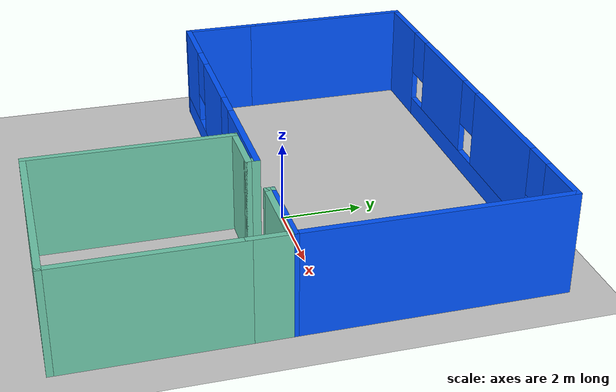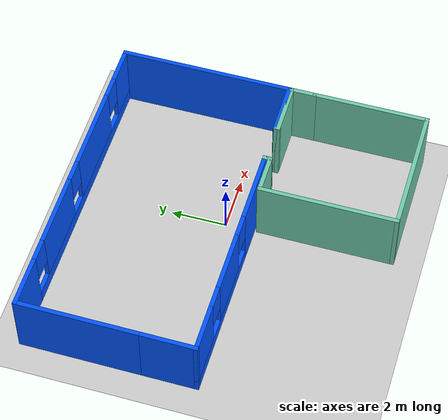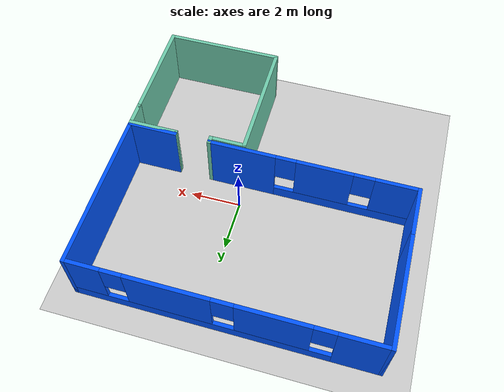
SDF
<?xml version="1.0" ?>
<sdf version="1.4">
  <!-- We use a custom world for the rrbot so that the camera angle is launched correctly -->

  <world name="default">
    <include>
      <uri>/home/antonio/ROS/mybot_ws/src/mybot_gazebo/worlds/RobotHouse</uri>
    </include>

    <include>
      <uri>model://ground_plane</uri>
    </include>

    <!-- Global light source -->
    <include>
      <uri>model://sun</uri>
    </include>

    <!-- Focus camera on tall pendulum -->
    <gui fullscreen='0'>
      <camera name='user_camera'>
        <pose>4.927360 -4.376610 3.740080 0.000000 0.275643 2.356190</pose>
        <view_controller>orbit</view_controller>
      </camera>
    </gui>

  </world>
</sdf>

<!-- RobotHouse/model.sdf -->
<sdf version='1.6'>
  <model name='RobotHouse'>
    <pose frame=''>-0.961892 -0.402466 0 0 -0 0</pose>
    <link name='Wall_0'>
      <pose frame=''>-1.625 -0.575 0 0 -0 3.14159</pose>
      <visual name='Wall_0_Visual_0'>
        <pose frame=''>-2.76283 0 1.25 0 -0 0</pose>
        <geometry>
          <box>
            <size>2.72433 0.15 2.5</size>
          </box>
        </geometry>
        <material>
          <script>
            <uri>file://media/materials/scripts/gazebo.material</uri>
            <name>Gazebo/Grey</name>
          </script>
          <ambient>0 0.333333 1 1</ambient>
        </material>
      </visual>
      <collision name='Wall_0_Collision_0'>
        <geometry>
          <box>
            <size>2.72433 0.15 2.5</size>
          </box>
        </geometry>
        <pose frame=''>-2.76283 0 1.25 0 -0 0</pose>
      </collision>
      <visual name='Wall_0_Visual_1'>
        <pose frame=''>1.36217 0 0.25 0 -0 0</pose>
        <geometry>
          <box>
            <size>5.52567 0.15 0.5</size>
          </box>
        </geometry>
        <material>
          <script>
            <uri>file://media/materials/scripts/gazebo.material</uri>
            <name>Gazebo/Grey</name>
          </script>
          <ambient>0 0.333333 1 1</ambient>
        </material>
      </visual>
      <collision name='Wall_0_Collision_1'>
        <geometry>
          <box>
            <size>5.52567 0.15 0.5</size>
          </box>
        </geometry>
        <pose frame=''>1.36217 0 0.25 0 -0 0</pose>
      </collision>
      <visual name='Wall_0_Visual_2'>
        <pose frame=''>0.498252 0 1.5 0 -0 0</pose>
        <geometry>
          <box>
            <size>2.19784 0.15 2</size>
          </box>
        </geometry>
        <material>
          <script>
            <uri>file://media/materials/scripts/gazebo.material</uri>
            <name>Gazebo/Grey</name>
          </script>
          <ambient>0 0.333333 1 1</ambient>
        </material>
      </visual>
      <collision name='Wall_0_Collision_2'>
        <geometry>
          <box>
            <size>2.19784 0.15 2</size>
          </box>
        </geometry>
        <pose frame=''>0.498252 0 1.5 0 -0 0</pose>
      </collision>
      <visual name='Wall_0_Visual_3'>
        <pose frame=''>3.26109 0 1.5 0 -0 0</pose>
        <geometry>
          <box>
            <size>1.72783 0.15 2</size>
          </box>
        </geometry>
        <material>
          <script>
            <uri>file://media/materials/scripts/gazebo.material</uri>
            <name>Gazebo/Grey</name>
          </script>
          <ambient>0 0.333333 1 1</ambient>
        </material>
      </visual>
      <collision name='Wall_0_Collision_3'>
        <geometry>
          <box>
            <size>1.72783 0.15 2</size>
          </box>
        </geometry>
        <pose frame=''>3.26109 0 1.5 0 -0 0</pose>
      </collision>
      <visual name='Wall_0_Visual_4'>
        <pose frame=''>-1.00067 0 1.9 0 -0 0</pose>
        <geometry>
          <box>
            <size>0.8 0.15 1.2</size>
          </box>
        </geometry>
        <material>
          <script>
            <uri>file://media/materials/scripts/gazebo.material</uri>
            <name>Gazebo/Grey</name>
          </script>
          <ambient>0 0.333333 1 1</ambient>
        </material>
      </visual>
      <collision name='Wall_0_Collision_4'>
        <geometry>
          <box>
            <size>0.8 0.15 1.2</size>
          </box>
        </geometry>
        <pose frame=''>-1.00067 0 1.9 0 -0 0</pose>
      </collision>
      <visual name='Wall_0_Visual_5'>
        <pose frame=''>1.99717 0 1.9 0 -0 0</pose>
        <geometry>
          <box>
            <size>0.8 0.15 1.2</size>
          </box>
        </geometry>
        <material>
          <script>
            <uri>file://media/materials/scripts/gazebo.material</uri>
            <name>Gazebo/Grey</name>
          </script>
          <ambient>0 0.333333 1 1</ambient>
        </material>
      </visual>
      <collision name='Wall_0_Collision_5'>
        <geometry>
          <box>
            <size>0.8 0.15 1.2</size>
          </box>
        </geometry>
        <pose frame=''>1.99717 0 1.9 0 -0 0</pose>
      </collision>
    </link>
    <link name='Wall_1'>
      <collision name='Wall_1_Collision'>
        <geometry>
          <box>
            <size>2 0.15 2.5</size>
          </box>
        </geometry>
        <pose frame=''>0 0 1.25 0 -0 0</pose>
      </collision>
      <visual name='Wall_1_Visual'>
        <pose frame=''>0 0 1.25 0 -0 0</pose>
        <geometry>
          <box>
            <size>2 0.15 2.5</size>
          </box>
        </geometry>
        <material>
          <script>
            <uri>file://media/materials/scripts/gazebo.material</uri>
            <name>Gazebo/Grey</name>
          </script>
          <ambient>0 0.333333 1 1</ambient>
        </material>
      </visual>
      <pose frame=''>-5.675 0.35 0 0 -0 1.5708</pose>
    </link>
    <link name='Wall_10'>
      <collision name='Wall_10_Collision'>
        <geometry>
          <box>
            <size>4.25 0.15 2.5</size>
          </box>
        </geometry>
        <pose frame=''>0 0 1.25 0 -0 0</pose>
      </collision>
      <visual name='Wall_10_Visual'>
        <pose frame=''>0 0 1.25 0 -0 0</pose>
        <geometry>
          <box>
            <size>4.25 0.15 2.5</size>
          </box>
        </geometry>
        <material>
          <script>
            <uri>file://media/materials/scripts/gazebo.material</uri>
            <name>Gazebo/Grey</name>
          </script>
          <ambient>0.435294 0.796078 0.67451 1</ambient>
        </material>
      </visual>
      <pose frame=''>5.675 -3.575 0 0 0 -1.5708</pose>
    </link>
    <link name='Wall_11'>
      <collision name='Wall_11_Collision'>
        <geometry>
          <box>
            <size>4.75 0.15 2.5</size>
          </box>
        </geometry>
        <pose frame=''>0 0 1.25 0 -0 0</pose>
      </collision>
      <visual name='Wall_11_Visual'>
        <pose frame=''>0 0 1.25 0 -0 0</pose>
        <geometry>
          <box>
            <size>4.75 0.15 2.5</size>
          </box>
        </geometry>
        <material>
          <script>
            <uri>file://media/materials/scripts/gazebo.material</uri>
            <name>Gazebo/Grey</name>
          </script>
          <ambient>0.435294 0.796078 0.67451 1</ambient>
        </material>
      </visual>
      <pose frame=''>3.375 -5.625 0 0 -0 3.14159</pose>
    </link>
    <link name='Wall_12'>
      <collision name='Wall_12_Collision'>
        <geometry>
          <box>
            <size>5 0.15 2.5</size>
          </box>
        </geometry>
        <pose frame=''>0 0 1.25 0 -0 0</pose>
      </collision>
      <visual name='Wall_12_Visual'>
        <pose frame=''>0 0 1.25 0 -0 0</pose>
        <geometry>
          <box>
            <size>5 0.15 2.5</size>
          </box>
        </geometry>
        <material>
          <script>
            <uri>file://media/materials/scripts/gazebo.material</uri>
            <name>Gazebo/Grey</name>
          </script>
          <ambient>0.435294 0.796078 0.67451 1</ambient>
        </material>
      </visual>
      <pose frame=''>1.075 -3.2 0 0 -0 1.5708</pose>
    </link>
    <link name='Wall_13'>
      <collision name='Wall_13_Collision'>
        <geometry>
          <box>
            <size>1.5 0.15 2.5</size>
          </box>
        </geometry>
        <pose frame=''>0 0 1.25 0 -0 0</pose>
      </collision>
      <visual name='Wall_13_Visual'>
        <pose frame=''>0 0 1.25 0 -0 0</pose>
        <geometry>
          <box>
            <size>1.5 0.15 2.5</size>
          </box>
        </geometry>
        <material>
          <script>
            <uri>file://media/materials/scripts/gazebo.material</uri>
            <name>Gazebo/Grey</name>
          </script>
          <ambient>0.435294 0.796078 0.67451 1</ambient>
        </material>
      </visual>
      <pose frame=''>1.75 -0.775 0 0 -0 0</pose>
    </link>
    <link name='Wall_2'>
      <collision name='Wall_2_Collision'>
        <geometry>
          <box>
            <size>4.5 0.15 2.5</size>
          </box>
        </geometry>
        <pose frame=''>0 0 1.25 0 -0 0</pose>
      </collision>
      <visual name='Wall_2_Visual'>
        <pose frame=''>0 0 1.25 0 -0 0</pose>
        <geometry>
          <box>
            <size>4.5 0.15 2.5</size>
          </box>
        </geometry>
        <material>
          <script>
            <uri>file://media/materials/scripts/gazebo.material</uri>
            <name>Gazebo/Grey</name>
          </script>
          <ambient>0 0.333333 1 1</ambient>
        </material>
      </visual>
      <pose frame=''>-5.675 3.45 0 0 -0 1.5708</pose>
    </link>
    <link name='Wall_21'>
      <collision name='Wall_21_Collision'>
        <geometry>
          <box>
            <size>0.35 0.15 2.5</size>
          </box>
        </geometry>
        <pose frame=''>0 0 1.25 0 -0 0</pose>
      </collision>
      <visual name='Wall_21_Visual'>
        <pose frame=''>0 0 1.25 0 -0 0</pose>
        <geometry>
          <box>
            <size>0.35 0.15 2.5</size>
          </box>
        </geometry>
        <material>
          <script>
            <uri>file://media/materials/scripts/gazebo.material</uri>
            <name>Gazebo/Grey</name>
          </script>
          <ambient>0.435294 0.796078 0.67451 1</ambient>
        </material>
      </visual>
      <pose frame=''>2.425 -0.675 0 0 -0 1.5708</pose>
    </link>
    <link name='Wall_23'>
      <collision name='Wall_23_Collision'>
        <geometry>
          <box>
            <size>2 0.15 2.5</size>
          </box>
        </geometry>
        <pose frame=''>0 0 1.25 0 -0 0</pose>
      </collision>
      <visual name='Wall_23_Visual'>
        <pose frame=''>0 0 1.25 0 -0 0</pose>
        <geometry>
          <box>
            <size>2 0.15 2.5</size>
          </box>
        </geometry>
        <material>
          <script>
            <uri>file://media/materials/scripts/gazebo.material</uri>
            <name>Gazebo/Grey</name>
          </script>
          <ambient>0.435294 0.796078 0.67451 1</ambient>
        </material>
      </visual>
      <pose frame=''>4.75 -0.675 0 0 -0 3.14159</pose>
    </link>
    <link name='Wall_24'>
      <collision name='Wall_24_Collision'>
        <geometry>
          <box>
            <size>0.25 0.15 2.5</size>
          </box>
        </geometry>
        <pose frame=''>0 0 1.25 0 -0 0</pose>
      </collision>
      <visual name='Wall_24_Visual'>
        <pose frame=''>0 0 1.25 0 -0 0</pose>
        <geometry>
          <box>
            <size>0.25 0.15 2.5</size>
          </box>
        </geometry>
        <material>
          <script>
            <uri>file://media/materials/scripts/gazebo.material</uri>
            <name>Gazebo/Grey</name>
          </script>
          <ambient>0.435294 0.796078 0.67451 1</ambient>
        </material>
      </visual>
      <pose frame=''>3.825 -0.625 0 0 -0 1.5708</pose>
    </link>
    <link name='Wall_25'>
      <collision name='Wall_25_Collision'>
        <geometry>
          <box>
            <size>2 0.15 2.5</size>
          </box>
        </geometry>
        <pose frame=''>0 0 1.25 0 -0 0</pose>
      </collision>
      <visual name='Wall_25_Visual'>
        <pose frame=''>0 0 1.25 0 -0 0</pose>
        <geometry>
          <box>
            <size>2 0.15 2.5</size>
          </box>
        </geometry>
        <material>
          <script>
            <uri>file://media/materials/scripts/gazebo.material</uri>
            <name>Gazebo/Grey</name>
          </script>
          <ambient>0 0.333333 1 1</ambient>
        </material>
      </visual>
      <pose frame=''>4.75 -0.575 0 0 -0 0</pose>
    </link>
    <link name='Wall_3'>
      <pose frame=''>0 5.625 0 0 -0 0</pose>
      <visual name='Wall_3_Visual_0'>
        <pose frame=''>-4.81996 0 1.25 0 -0 0</pose>
        <geometry>
          <box>
            <size>1.86008 0.15 2.5</size>
          </box>
        </geometry>
        <material>
          <script>
            <uri>file://media/materials/scripts/gazebo.material</uri>
            <name>Gazebo/Grey</name>
          </script>
          <ambient>0 0.333333 1 1</ambient>
        </material>
      </visual>
      <collision name='Wall_3_Collision_0'>
        <geometry>
          <box>
            <size>1.86008 0.15 2.5</size>
          </box>
        </geometry>
        <pose frame=''>-4.81996 0 1.25 0 -0 0</pose>
      </collision>
      <visual name='Wall_3_Visual_1'>
        <pose frame=''>0.93004 0 0.25 0 -0 0</pose>
        <geometry>
          <box>
            <size>9.63992 0.15 0.5</size>
          </box>
        </geometry>
        <material>
          <script>
            <uri>file://media/materials/scripts/gazebo.material</uri>
            <name>Gazebo/Grey</name>
          </script>
          <ambient>0 0.333333 1 1</ambient>
        </material>
      </visual>
      <collision name='Wall_3_Collision_1'>
        <geometry>
          <box>
            <size>9.63992 0.15 0.5</size>
          </box>
        </geometry>
        <pose frame=''>0.93004 0 0.25 0 -0 0</pose>
      </collision>
      <visual name='Wall_3_Visual_2'>
        <pose frame=''>-1.74857 0 1.5 0 -0 0</pose>
        <geometry>
          <box>
            <size>2.6827 0.15 2</size>
          </box>
        </geometry>
        <material>
          <script>
            <uri>file://media/materials/scripts/gazebo.material</uri>
            <name>Gazebo/Grey</name>
          </script>
          <ambient>0 0.333333 1 1</ambient>
        </material>
      </visual>
      <collision name='Wall_3_Collision_2'>
        <geometry>
          <box>
            <size>2.6827 0.15 2</size>
          </box>
        </geometry>
        <pose frame=''>-1.74857 0 1.5 0 -0 0</pose>
      </collision>
      <visual name='Wall_3_Visual_3'>
        <pose frame=''>1.96279 0 1.5 0 -0 0</pose>
        <geometry>
          <box>
            <size>3.14002 0.15 2</size>
          </box>
        </geometry>
        <material>
          <script>
            <uri>file://media/materials/scripts/gazebo.material</uri>
            <name>Gazebo/Grey</name>
          </script>
          <ambient>0 0.333333 1 1</ambient>
        </material>
      </visual>
      <collision name='Wall_3_Collision_3'>
        <geometry>
          <box>
            <size>3.14002 0.15 2</size>
          </box>
        </geometry>
        <pose frame=''>1.96279 0 1.5 0 -0 0</pose>
      </collision>
      <visual name='Wall_3_Visual_4'>
        <pose frame=''>5.0414 0 1.5 0 -0 0</pose>
        <geometry>
          <box>
            <size>1.4172 0.15 2</size>
          </box>
        </geometry>
        <material>
          <script>
            <uri>file://media/materials/scripts/gazebo.material</uri>
            <name>Gazebo/Grey</name>
          </script>
          <ambient>0 0.333333 1 1</ambient>
        </material>
      </visual>
      <collision name='Wall_3_Collision_4'>
        <geometry>
          <box>
            <size>1.4172 0.15 2</size>
          </box>
        </geometry>
        <pose frame=''>5.0414 0 1.5 0 -0 0</pose>
      </collision>
      <visual name='Wall_3_Visual_5'>
        <pose frame=''>-3.48992 0 1.9 0 -0 0</pose>
        <geometry>
          <box>
            <size>0.8 0.15 1.2</size>
          </box>
        </geometry>
        <material>
          <script>
            <uri>file://media/materials/scripts/gazebo.material</uri>
            <name>Gazebo/Grey</name>
          </script>
          <ambient>0 0.333333 1 1</ambient>
        </material>
      </visual>
      <collision name='Wall_3_Collision_5'>
        <geometry>
          <box>
            <size>0.8 0.15 1.2</size>
          </box>
        </geometry>
        <pose frame=''>-3.48992 0 1.9 0 -0 0</pose>
      </collision>
      <visual name='Wall_3_Visual_6'>
        <pose frame=''>-0.007223 0 1.9 0 -0 0</pose>
        <geometry>
          <box>
            <size>0.8 0.15 1.2</size>
          </box>
        </geometry>
        <material>
          <script>
            <uri>file://media/materials/scripts/gazebo.material</uri>
            <name>Gazebo/Grey</name>
          </script>
          <ambient>0 0.333333 1 1</ambient>
        </material>
      </visual>
      <collision name='Wall_3_Collision_6'>
        <geometry>
          <box>
            <size>0.8 0.15 1.2</size>
          </box>
        </geometry>
        <pose frame=''>-0.007223 0 1.9 0 -0 0</pose>
      </collision>
      <visual name='Wall_3_Visual_7'>
        <pose frame=''>3.9328 0 1.9 0 -0 0</pose>
        <geometry>
          <box>
            <size>0.8 0.15 1.2</size>
          </box>
        </geometry>
        <material>
          <script>
            <uri>file://media/materials/scripts/gazebo.material</uri>
            <name>Gazebo/Grey</name>
          </script>
          <ambient>0 0.333333 1 1</ambient>
        </material>
      </visual>
      <collision name='Wall_3_Collision_7'>
        <geometry>
          <box>
            <size>0.8 0.15 1.2</size>
          </box>
        </geometry>
        <pose frame=''>3.9328 0 1.9 0 -0 0</pose>
      </collision>
    </link>
    <link name='Wall_4'>
      <collision name='Wall_4_Collision'>
        <geometry>
          <box>
            <size>6.25 0.15 2.5</size>
          </box>
        </geometry>
        <pose frame=''>0 0 1.25 0 -0 0</pose>
      </collision>
      <visual name='Wall_4_Visual'>
        <pose frame=''>0 0 1.25 0 -0 0</pose>
        <geometry>
          <box>
            <size>6.25 0.15 2.5</size>
          </box>
        </geometry>
        <material>
          <script>
            <uri>file://media/materials/scripts/gazebo.material</uri>
            <name>Gazebo/Grey</name>
          </script>
          <ambient>0 0.333333 1 1</ambient>
        </material>
      </visual>
      <pose frame=''>5.675 2.575 0 0 0 -1.5708</pose>
    </link>
    <link name='Wall_9'>
      <collision name='Wall_9_Collision'>
        <geometry>
          <box>
            <size>1 0.15 2.5</size>
          </box>
        </geometry>
        <pose frame=''>0 0 1.25 0 -0 0</pose>
      </collision>
      <visual name='Wall_9_Visual'>
        <pose frame=''>0 0 1.25 0 -0 0</pose>
        <geometry>
          <box>
            <size>1 0.15 2.5</size>
          </box>
        </geometry>
        <material>
          <script>
            <uri>file://media/materials/scripts/gazebo.material</uri>
            <name>Gazebo/Grey</name>
          </script>
          <ambient>0.435294 0.796078 0.67451 1</ambient>
        </material>
      </visual>
      <pose frame=''>5.675 -1.1 0 0 0 -1.5708</pose>
    </link>
    <static>1</static>
  </model>
</sdf>
